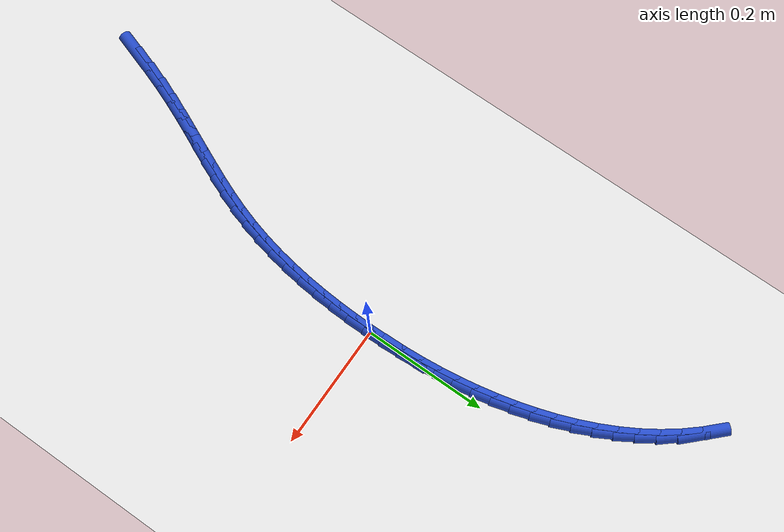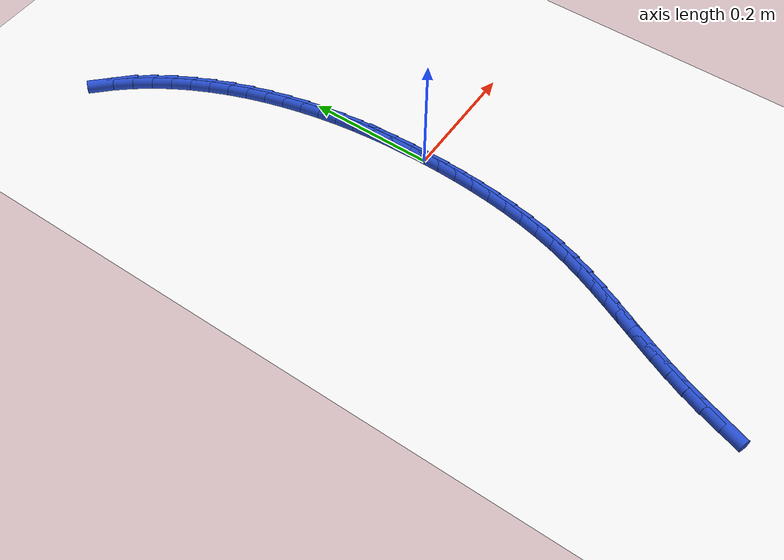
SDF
<sdf version="1.6">
 <world name="default">
  <model name="ground_plane">
   <static>1</static>
   <link name="link">
    <collision name="collision">
     <geometry><plane><normal>0 0 1</normal><size>100 100</size></plane></geometry>
     <surface><friction><ode><mu>100</mu><mu2>50</mu2></ode></friction></surface>
    </collision>
    <visual name="visual">
     <cast_shadows>0</cast_shadows>
     <geometry><plane><normal>0 0 1</normal><size>100 100</size></plane></geometry>
     <material>
      <script><uri>file://media/materials/scripts/gazebo.material</uri><name>Gazebo/WhiteGlow</name></script>
     </material>
    </visual>
   </link>
  </model>
  <model name="line">
   <link name="link_0">
    <pose>8.673617379884035e-19 0.0 0.01 0 1.57 -1.5537155592477754</pose>
    <collision name="collision">
     <geometry><cylinder><radius>0.01</radius><length>0.08</length></cylinder></geometry>
    </collision>
    <visual name="visual">
     <material>
      <script><name>Gazebo/Blue</name><uri>file://media/materials/scripts/gazebo.material</uri></script>
     </material>
     <geometry><cylinder><radius>0.01</radius><length>0.08</length></cylinder></geometry>
    </visual>
   </link>
   <link name="link_1">
    <pose>-0.0005280388320067188 0.030911226753349168 0.01 0 1.57 -1.5272445608165166</pose>
    <collision name="collision">
     <geometry><cylinder><radius>0.01</radius><length>0.08</length></cylinder></geometry>
    </collision>
    <visual name="visual">
     <material>
      <script><name>Gazebo/Blue</name><uri>file://media/materials/scripts/gazebo.material</uri></script>
     </material>
     <geometry><cylinder><radius>0.01</radius><length>0.08</length></cylinder></geometry>
    </visual>
   </link>
   <link name="link_2">
    <pose>-0.0018693940252636548 0.06169085144220721 0.01 0 1.57 -1.4989854534255072</pose>
    <collision name="collision">
     <geometry><cylinder><radius>0.01</radius><length>0.08</length></cylinder></geometry>
    </collision>
    <visual name="visual">
     <material>
      <script><name>Gazebo/Blue</name><uri>file://media/materials/scripts/gazebo.material</uri></script>
     </material>
     <geometry><cylinder><radius>0.01</radius><length>0.08</length></cylinder></geometry>
    </visual>
   </link>
   <link name="link_3">
    <pose>-0.004073394884224138 0.09232981906603097 0.01 0 1.57 -1.468950781116024</pose>
    <collision name="collision">
     <geometry><cylinder><radius>0.01</radius><length>0.08</length></cylinder></geometry>
    </collision>
    <visual name="visual">
     <material>
      <script><name>Gazebo/Blue</name><uri>file://media/materials/scripts/gazebo.material</uri></script>
     </material>
     <geometry><cylinder><radius>0.01</radius><length>0.08</length></cylinder></geometry>
    </visual>
   </link>
   <link name="link_4">
    <pose>-0.007189370713341492 0.12281907462427716 0.01 0 1.57 -1.4371689759049169</pose>
    <collision name="collision">
     <geometry><cylinder><radius>0.01</radius><length>0.08</length></cylinder></geometry>
    </collision>
    <visual name="visual">
     <material>
      <script><name>Gazebo/Blue</name><uri>file://media/materials/scripts/gazebo.material</uri></script>
     </material>
     <geometry><cylinder><radius>0.01</radius><length>0.08</length></cylinder></geometry>
    </visual>
   </link>
   <link name="link_5">
    <pose>-0.011266650817069051 0.15314956311640274 0.01 0 1.57 -1.4036869510405978</pose>
    <collision name="collision">
     <geometry><cylinder><radius>0.01</radius><length>0.08</length></cylinder></geometry>
    </collision>
    <visual name="visual">
     <material>
      <script><name>Gazebo/Blue</name><uri>file://media/materials/scripts/gazebo.material</uri></script>
     </material>
     <geometry><cylinder><radius>0.01</radius><length>0.08</length></cylinder></geometry>
    </visual>
   </link>
   <link name="link_6">
    <pose>-0.016354564499860152 0.1833122295418645 0.01 0 1.57 -1.3685724548292852</pose>
    <collision name="collision">
     <geometry><cylinder><radius>0.01</radius><length>0.08</length></cylinder></geometry>
    </collision>
    <visual name="visual">
     <material>
      <script><name>Gazebo/Blue</name><uri>file://media/materials/scripts/gazebo.material</uri></script>
     </material>
     <geometry><cylinder><radius>0.01</radius><length>0.08</length></cylinder></geometry>
    </visual>
   </link>
   <link name="link_7">
    <pose>-0.022502441066168107 0.21329801890011915 0.01 0 1.57 -1.3319159829816518</pose>
    <collision name="collision">
     <geometry><cylinder><radius>0.01</radius><length>0.08</length></cylinder></geometry>
    </collision>
    <visual name="visual">
     <material>
      <script><name>Gazebo/Blue</name><uri>file://media/materials/scripts/gazebo.material</uri></script>
     </material>
     <geometry><cylinder><radius>0.01</radius><length>0.08</length></cylinder></geometry>
    </visual>
   </link>
   <link name="link_8">
    <pose>-0.029759609820446252 0.24309787619062362 0.01 0 1.57 -1.2937988302686025</pose>
    <collision name="collision">
     <geometry><cylinder><radius>0.01</radius><length>0.08</length></cylinder></geometry>
    </collision>
    <visual name="visual">
     <material>
      <script><name>Gazebo/Blue</name><uri>file://media/materials/scripts/gazebo.material</uri></script>
     </material>
     <geometry><cylinder><radius>0.01</radius><length>0.08</length></cylinder></geometry>
    </visual>
   </link>
   <link name="link_9">
    <pose>-0.03817584782040652 0.27270058496048133 0.01 0 1.57 -1.253406238660107</pose>
    <collision name="collision">
     <geometry><cylinder><radius>0.01</radius><length>0.08</length></cylinder></geometry>
    </collision>
    <visual name="visual">
     <material>
      <script><name>Gazebo/Blue</name><uri>file://media/materials/scripts/gazebo.material</uri></script>
     </material>
     <geometry><cylinder><radius>0.01</radius><length>0.08</length></cylinder></geometry>
    </visual>
   </link>
   <link name="link_10">
    <pose>-0.04781285189020945 0.3020373881208552 0.01 0 1.57 -1.2096071124289633</pose>
    <collision name="collision">
     <geometry><cylinder><radius>0.01</radius><length>0.08</length></cylinder></geometry>
    </collision>
    <visual name="visual">
     <material>
      <script><name>Gazebo/Blue</name><uri>file://media/materials/scripts/gazebo.material</uri></script>
     </material>
     <geometry><cylinder><radius>0.01</radius><length>0.08</length></cylinder></geometry>
    </visual>
   </link>
   <link name="link_11">
    <pose>-0.05874521572094329 0.3309772711613518 0.01 0 1.57 -1.1621118894740254</pose>
    <collision name="collision">
     <geometry><cylinder><radius>0.01</radius><length>0.08</length></cylinder></geometry>
    </collision>
    <visual name="visual">
     <material>
      <script><name>Gazebo/Blue</name><uri>file://media/materials/scripts/gazebo.material</uri></script>
     </material>
     <geometry><cylinder><radius>0.01</radius><length>0.08</length></cylinder></geometry>
    </visual>
   </link>
   <link name="link_12">
    <pose>-0.07104817655738992 0.3593861129260778 0.01 0 1.57 -1.1107030475703215</pose>
    <collision name="collision">
     <geometry><cylinder><radius>0.01</radius><length>0.08</length></cylinder></geometry>
    </collision>
    <visual name="visual">
     <material>
      <script><name>Gazebo/Blue</name><uri>file://media/materials/scripts/gazebo.material</uri></script>
     </material>
     <geometry><cylinder><radius>0.01</radius><length>0.08</length></cylinder></geometry>
    </visual>
   </link>
   <link name="link_13">
    <pose>-0.08479697164433113 0.3871297922591401 0.01 0 1.57 -1.055208674298638</pose>
    <collision name="collision">
     <geometry><cylinder><radius>0.01</radius><length>0.08</length></cylinder></geometry>
    </collision>
    <visual name="visual">
     <material>
      <script><name>Gazebo/Blue</name><uri>file://media/materials/scripts/gazebo.material</uri></script>
     </material>
     <geometry><cylinder><radius>0.01</radius><length>0.08</length></cylinder></geometry>
    </visual>
   </link>
   <link name="link_14">
    <pose>-0.10006683822654884 0.41407418800464557 0.01 0 1.57 -0.9955291498775276</pose>
    <collision name="collision">
     <geometry><cylinder><radius>0.01</radius><length>0.08</length></cylinder></geometry>
    </collision>
    <visual name="visual">
     <material>
      <script><name>Gazebo/Blue</name><uri>file://media/materials/scripts/gazebo.material</uri></script>
     </material>
     <geometry><cylinder><radius>0.01</radius><length>0.08</length></cylinder></geometry>
    </visual>
   </link>
   <link name="link_15">
    <pose>-0.11693301354882488 0.4400851790067008 0.01 0 1.57 -0.9316682070021687</pose>
    <collision name="collision">
     <geometry><cylinder><radius>0.01</radius><length>0.08</length></cylinder></geometry>
    </collision>
    <visual name="visual">
     <material>
      <script><name>Gazebo/Blue</name><uri>file://media/materials/scripts/gazebo.material</uri></script>
     </material>
     <geometry><cylinder><radius>0.01</radius><length>0.08</length></cylinder></geometry>
    </visual>
   </link>
   <link name="link_16">
    <pose>-0.1354707348559411 0.46502864410941264 0.01 0 1.57 -0.8637656660985021</pose>
    <collision name="collision">
     <geometry><cylinder><radius>0.01</radius><length>0.08</length></cylinder></geometry>
    </collision>
    <visual name="visual">
     <material>
      <script><name>Gazebo/Blue</name><uri>file://media/materials/scripts/gazebo.material</uri></script>
     </material>
     <geometry><cylinder><radius>0.01</radius><length>0.08</length></cylinder></geometry>
    </visual>
   </link>
   <link name="link_17">
    <pose>-0.1557552393926794 0.488770462156888 0.01 0 1.57 -0.7921270553024634</pose>
    <collision name="collision">
     <geometry><cylinder><radius>0.01</radius><length>0.08</length></cylinder></geometry>
    </collision>
    <visual name="visual">
     <material>
      <script><name>Gazebo/Blue</name><uri>file://media/materials/scripts/gazebo.material</uri></script>
     </material>
     <geometry><cylinder><radius>0.01</radius><length>0.08</length></cylinder></geometry>
    </visual>
   </link>
   <link name="link_221">
    <pose>-0.15460042986516123 -0.5611589254951325 0.01 0 1.57 1.2560511764212756</pose>
    <collision name="collision">
     <geometry><cylinder><radius>0.01</radius><length>0.08</length></cylinder></geometry>
    </collision>
    <visual name="visual">
     <material>
      <script><name>Gazebo/Blue</name><uri>file://media/materials/scripts/gazebo.material</uri></script>
     </material>
     <geometry><cylinder><radius>0.01</radius><length>0.08</length></cylinder></geometry>
    </visual>
   </link>
   <link name="link_222">
    <pose>-0.14421758202220292 -0.5292673945912809 0.01 0 1.57 1.233169676303266</pose>
    <collision name="collision">
     <geometry><cylinder><radius>0.01</radius><length>0.08</length></cylinder></geometry>
    </collision>
    <visual name="visual">
     <material>
      <script><name>Gazebo/Blue</name><uri>file://media/materials/scripts/gazebo.material</uri></script>
     </material>
     <geometry><cylinder><radius>0.01</radius><length>0.08</length></cylinder></geometry>
    </visual>
   </link>
   <link name="link_223">
    <pose>-0.13329355129956671 -0.4981508979571684 0.01 0 1.57 1.200015845589014</pose>
    <collision name="collision">
     <geometry><cylinder><radius>0.01</radius><length>0.08</length></cylinder></geometry>
    </collision>
    <visual name="visual">
     <material>
      <script><name>Gazebo/Blue</name><uri>file://media/materials/scripts/gazebo.material</uri></script>
     </material>
     <geometry><cylinder><radius>0.01</radius><length>0.08</length></cylinder></geometry>
    </visual>
   </link>
   <link name="link_224">
    <pose>-0.1216162578492145 -0.46811371940018637 0.01 0 1.57 1.1721657046820142</pose>
    <collision name="collision">
     <geometry><cylinder><radius>0.01</radius><length>0.08</length></cylinder></geometry>
    </collision>
    <visual name="visual">
     <material>
      <script><name>Gazebo/Blue</name><uri>file://media/materials/scripts/gazebo.material</uri></script>
     </material>
     <geometry><cylinder><radius>0.01</radius><length>0.08</length></cylinder></geometry>
    </visual>
   </link>
   <link name="link_225">
    <pose>-0.10936537507907655 -0.439026671095226 0.01 0 1.57 1.153743515056406</pose>
    <collision name="collision">
     <geometry><cylinder><radius>0.01</radius><length>0.08</length></cylinder></geometry>
    </collision>
    <visual name="visual">
     <material>
      <script><name>Gazebo/Blue</name><uri>file://media/materials/scripts/gazebo.material</uri></script>
     </material>
     <geometry><cylinder><radius>0.01</radius><length>0.08</length></cylinder></geometry>
    </visual>
   </link>
   <link name="link_226">
    <pose>-0.09680225525789678 -0.41067018825515517 0.01 0 1.57 1.145450365723585</pose>
    <collision name="collision">
     <geometry><cylinder><radius>0.01</radius><length>0.08</length></cylinder></geometry>
    </collision>
    <visual name="visual">
     <material>
      <script><name>Gazebo/Blue</name><uri>file://media/materials/scripts/gazebo.material</uri></script>
     </material>
     <geometry><cylinder><radius>0.01</radius><length>0.08</length></cylinder></geometry>
    </visual>
   </link>
   <link name="link_227">
    <pose>-0.08418825065441914 -0.3828247060928425 0.01 0 1.57 1.14781515715594</pose>
    <collision name="collision">
     <geometry><cylinder><radius>0.01</radius><length>0.08</length></cylinder></geometry>
    </collision>
    <visual name="visual">
     <material>
      <script><name>Gazebo/Blue</name><uri>file://media/materials/scripts/gazebo.material</uri></script>
     </material>
     <geometry><cylinder><radius>0.01</radius><length>0.08</length></cylinder></geometry>
    </visual>
   </link>
   <link name="link_228">
    <pose>-0.07178471353738752 -0.355270659821156 0.01 0 1.57 1.1611910098946887</pose>
    <collision name="collision">
     <geometry><cylinder><radius>0.01</radius><length>0.08</length></cylinder></geometry>
    </collision>
    <visual name="visual">
     <material>
      <script><name>Gazebo/Blue</name><uri>file://media/materials/scripts/gazebo.material</uri></script>
     </material>
     <geometry><cylinder><radius>0.01</radius><length>0.08</length></cylinder></geometry>
    </visual>
   </link>
   <link name="link_229">
    <pose>-0.05985299617554587 -0.3277884846529643 0.01 0 1.57 1.1857243927252101</pose>
    <collision name="collision">
     <geometry><cylinder><radius>0.01</radius><length>0.08</length></cylinder></geometry>
    </collision>
    <visual name="visual">
     <material>
      <script><name>Gazebo/Blue</name><uri>file://media/materials/scripts/gazebo.material</uri></script>
     </material>
     <geometry><cylinder><radius>0.01</radius><length>0.08</length></cylinder></geometry>
    </visual>
   </link>
   <link name="link_230">
    <pose>-0.04865445083763776 -0.30015861580113445 0.01 0 1.57 1.2212921421994678</pose>
    <collision name="collision">
     <geometry><cylinder><radius>0.01</radius><length>0.08</length></cylinder></geometry>
    </collision>
    <visual name="visual">
     <material>
      <script><name>Gazebo/Blue</name><uri>file://media/materials/scripts/gazebo.material</uri></script>
     </material>
     <geometry><cylinder><radius>0.01</radius><length>0.08</length></cylinder></geometry>
    </visual>
   </link>
   <link name="link_231">
    <pose>-0.03845042979240778 -0.27216148847853666 0.01 0 1.57 1.267070482631305</pose>
    <collision name="collision">
     <geometry><cylinder><radius>0.01</radius><length>0.08</length></cylinder></geometry>
    </collision>
    <visual name="visual">
     <material>
      <script><name>Gazebo/Blue</name><uri>file://media/materials/scripts/gazebo.material</uri></script>
     </material>
     <geometry><cylinder><radius>0.01</radius><length>0.08</length></cylinder></geometry>
    </visual>
   </link>
   <link name="link_232">
    <pose>-0.02949400337470181 -0.24358535796800623 0.01 0 1.57 1.3155597863908532</pose>
    <collision name="collision">
     <geometry><cylinder><radius>0.01</radius><length>0.08</length></cylinder></geometry>
    </collision>
    <visual name="visual">
     <material>
      <script><name>Gazebo/Blue</name><uri>file://media/materials/scripts/gazebo.material</uri></script>
     </material>
     <geometry><cylinder><radius>0.01</radius><length>0.08</length></cylinder></geometry>
    </visual>
   </link>
   <link name="link_233">
    <pose>-0.02187227130893117 -0.21437519437313302 0.01 0 1.57 1.360429485339372</pose>
    <collision name="collision">
     <geometry><cylinder><radius>0.01</radius><length>0.08</length></cylinder></geometry>
    </collision>
    <visual name="visual">
     <material>
      <script><name>Gazebo/Blue</name><uri>file://media/materials/scripts/gazebo.material</uri></script>
     </material>
     <geometry><cylinder><radius>0.01</radius><length>0.08</length></cylinder></geometry>
    </visual>
   </link>
   <link name="link_234">
    <pose>-0.015518937078014945 -0.18462080949222956 0.01 0 1.57 1.401684646442792</pose>
    <collision name="collision">
     <geometry><cylinder><radius>0.01</radius><length>0.08</length></cylinder></geometry>
    </collision>
    <visual name="visual">
     <material>
      <script><name>Gazebo/Blue</name><uri>file://media/materials/scripts/gazebo.material</uri></script>
     </material>
     <geometry><cylinder><radius>0.01</radius><length>0.08</length></cylinder></geometry>
    </visual>
   </link>
   <link name="link_235">
    <pose>-0.010361941999373485 -0.15441745594672146 0.01 0 1.57 1.4395813960655948</pose>
    <collision name="collision">
     <geometry><cylinder><radius>0.01</radius><length>0.08</length></cylinder></geometry>
    </collision>
    <visual name="visual">
     <material>
      <script><name>Gazebo/Blue</name><uri>file://media/materials/scripts/gazebo.material</uri></script>
     </material>
     <geometry><cylinder><radius>0.01</radius><length>0.08</length></cylinder></geometry>
    </visual>
   </link>
   <link name="link_236">
    <pose>-0.006329227390427138 -0.12386038635803402 0.01 0 1.57 1.4743757774266937</pose>
    <collision name="collision">
     <geometry><cylinder><radius>0.01</radius><length>0.08</length></cylinder></geometry>
    </collision>
    <visual name="visual">
     <material>
      <script><name>Gazebo/Blue</name><uri>file://media/materials/scripts/gazebo.material</uri></script>
     </material>
     <geometry><cylinder><radius>0.01</radius><length>0.08</length></cylinder></geometry>
    </visual>
   </link>
   <link name="link_237">
    <pose>-0.0033487345685962624 -0.09304485334759281 0.01 0 1.57 1.5063148038338352</pose>
    <collision name="collision">
     <geometry><cylinder><radius>0.01</radius><length>0.08</length></cylinder></geometry>
    </collision>
    <visual name="visual">
     <material>
      <script><name>Gazebo/Blue</name><uri>file://media/materials/scripts/gazebo.material</uri></script>
     </material>
     <geometry><cylinder><radius>0.01</radius><length>0.08</length></cylinder></geometry>
    </visual>
   </link>
   <link name="link_238">
    <pose>-0.001348404851301168 -0.06206610953682236 0.01 0 1.57 1.5356307547171433</pose>
    <collision name="collision">
     <geometry><cylinder><radius>0.01</radius><length>0.08</length></cylinder></geometry>
    </collision>
    <visual name="visual">
     <material>
      <script><name>Gazebo/Blue</name><uri>file://media/materials/scripts/gazebo.material</uri></script>
     </material>
     <geometry><cylinder><radius>0.01</radius><length>0.08</length></cylinder></geometry>
    </visual>
   </link>
   <link name="link_239">
    <pose>-0.00025617955596231616 -0.0310194075471498 0.01 0 1.57 1.562537828256771</pose>
    <collision name="collision">
     <geometry><cylinder><radius>0.01</radius><length>0.08</length></cylinder></geometry>
    </collision>
    <visual name="visual">
     <material>
      <script><name>Gazebo/Blue</name><uri>file://media/materials/scripts/gazebo.material</uri></script>
     </material>
     <geometry><cylinder><radius>0.01</radius><length>0.08</length></cylinder></geometry>
    </visual>
   </link>
   <link name="link_240">
    <pose>6.5052130349130266e-18 2.2898349882893854e-16 0.01 0 1.57 -1.5543622368592116</pose>
    <collision name="collision">
     <geometry><cylinder><radius>0.01</radius><length>0.08</length></cylinder></geometry>
    </collision>
    <visual name="visual">
     <material>
      <script><name>Gazebo/Blue</name><uri>file://media/materials/scripts/gazebo.material</uri></script>
     </material>
     <geometry><cylinder><radius>0.01</radius><length>0.08</length></cylinder></geometry>
    </visual>
   </link>
   <link name="link_241">
    <pose>-0.0005078075008345525 0.030896860483202292 0.01 0 1.57 -1.5317102261506161</pose>
    <collision name="collision">
     <geometry><cylinder><radius>0.01</radius><length>0.08</length></cylinder></geometry>
    </collision>
    <visual name="visual">
     <material>
      <script><name>Gazebo/Blue</name><uri>file://media/materials/scripts/gazebo.material</uri></script>
     </material>
     <geometry><cylinder><radius>0.01</radius><length>0.08</length></cylinder></geometry>
    </visual>
   </link>
   <link name="link_242">
    <pose>-0.0017075433758863487 0.06157592128103094 0.01 0 1.57 -1.5430727321389044</pose>
    <collision name="collision">
     <geometry><cylinder><radius>0.01</radius><length>0.08</length></cylinder></geometry>
    </collision>
    <visual name="visual">
     <material>
      <script><name>Gazebo/Blue</name><uri>file://media/materials/scripts/gazebo.material</uri></script>
     </material>
     <geometry><cylinder><radius>0.01</radius><length>0.08</length></cylinder></geometry>
    </visual>
   </link>
  </model>
 </world>
</sdf>
